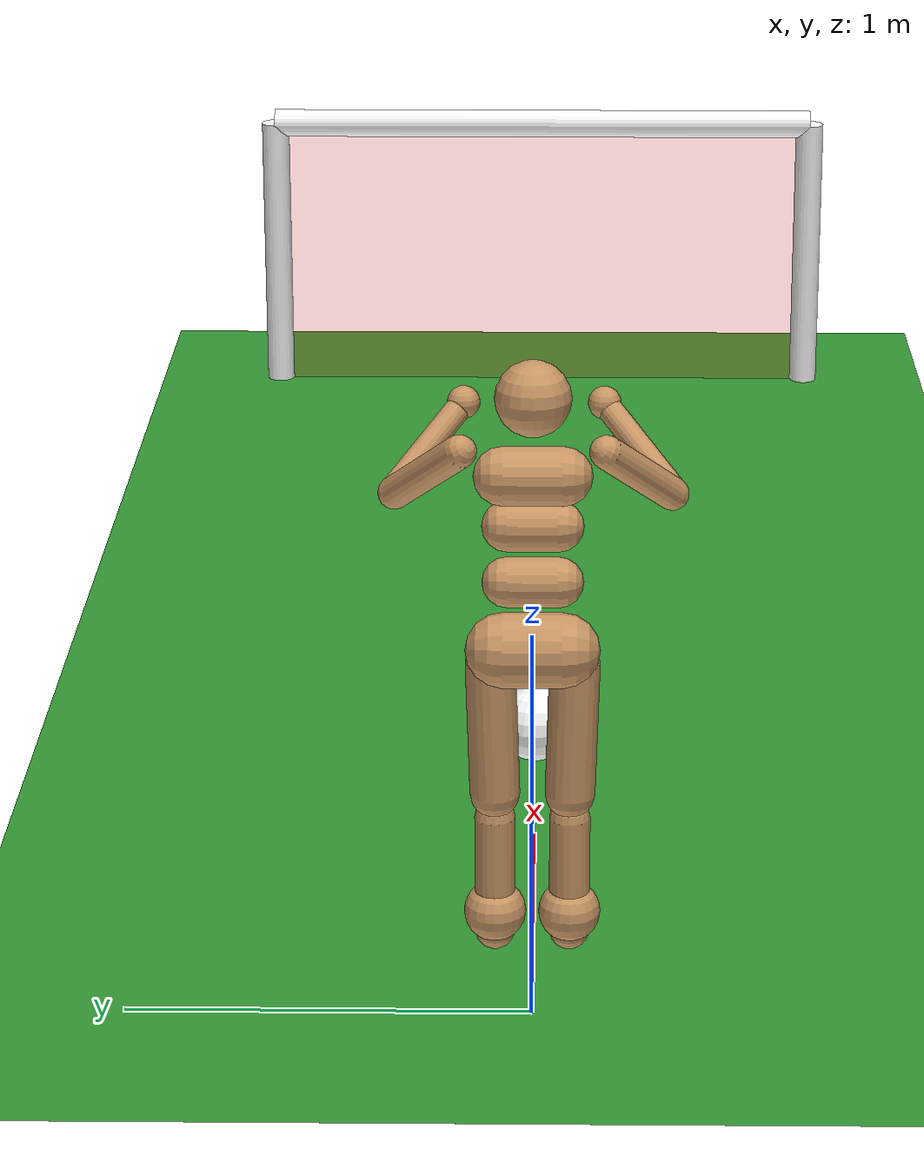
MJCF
<mujoco model="humanoid_soccer">
  <!--
    人形機器人足球場景
    基於 Gymnasium Humanoid-v5 修改，加入足球和球門
  -->

  <compiler angle="degree" inertiafromgeom="true"/>

  <default>
    <joint armature="1" damping="1" limited="true"/>
    <geom conaffinity="1" condim="3" contype="1" margin="0.001" material="geom" rgba="0.8 0.6 .4 1"/>
    <motor ctrllimited="true" ctrlrange="-.4 .4"/>
  </default>

  <option integrator="RK4" iterations="50" solver="PGS" timestep="0.003"/>

  <size nkey="5" nuser_geom="1"/>

  <visual>
    <map fogend="5" fogstart="3"/>
    <global offwidth="1280" offheight="720"/>
  </visual>

  <asset>
    <texture builtin="gradient" height="100" rgb1=".4 .5 .6" rgb2="0 0 0" type="skybox" width="100"/>
    <texture builtin="flat" height="1278" mark="cross" markrgb="1 1 1" name="texgeom" random="0.01" rgb1="0.8 0.6 0.4" rgb2="0.8 0.6 0.4" type="cube" width="127"/>
    <texture builtin="checker" height="100" name="texplane" rgb1="0.2 0.6 0.2" rgb2="0.1 0.5 0.1" type="2d" width="100"/>
    <material name="MatPlane" reflectance="0.5" shininess="1" specular="1" texrepeat="30 30" texture="texplane"/>
    <material name="geom" texture="texgeom" texuniform="true"/>
    <!-- 足球材質 - 白色帶黑色斑紋 -->
    <material name="ball_material" rgba="1 1 1 1" specular="0.5" shininess="0.5"/>
    <!-- 球門材質 - 白色 -->
    <material name="goal_material" rgba="1 1 1 1"/>
  </asset>

  <worldbody>
    <!-- 光源 -->
    <light cutoff="100" diffuse="1 1 1" dir="-0 0 -1.3" directional="true" exponent="1" pos="0 0 1.3" specular=".1 .1 .1"/>

    <!-- 地板 - 綠色足球場 -->
    <geom conaffinity="1" condim="3" material="MatPlane" name="floor" pos="0 0 0" rgba="0.2 0.6 0.2 1" size="20 20 0.1" type="plane"/>

    <!-- ==================== 人形機器人 ==================== -->
    <body name="torso" pos="0 0 1.4">
      <camera name="track" mode="trackcom" pos="0 -4 0" xyaxes="1 0 0 0 0 1"/>
      <joint armature="0" damping="0" limited="false" name="root" pos="0 0 0" stiffness="0" type="free"/>
      <geom fromto="0 -.07 0 0 .07 0" name="torso1" size="0.07" type="capsule"/>
      <geom name="head" pos="0 0 .19" size=".09" type="sphere" user="258"/>
      <geom fromto="-.01 -.06 -.12 -.01 .06 -.12" name="uwaist" size="0.06" type="capsule"/>

      <body name="lwaist" pos="-.01 0 -0.260" quat="1.000 0 -0.002 0">
        <geom fromto="0 -.06 0 0 .06 0" name="lwaist" size="0.06" type="capsule"/>
        <joint armature="0.02" axis="0 0 1" damping="5" name="abdomen_z" pos="0 0 0.065" range="-45 45" stiffness="20" type="hinge"/>
        <joint armature="0.02" axis="0 1 0" damping="5" name="abdomen_y" pos="0 0 0.065" range="-75 30" stiffness="10" type="hinge"/>

        <body name="pelvis" pos="0 0 -0.165" quat="1.000 0 -0.002 0">
          <joint armature="0.02" axis="1 0 0" damping="5" name="abdomen_x" pos="0 0 0.1" range="-35 35" stiffness="10" type="hinge"/>
          <geom fromto="-.02 -.07 0 -.02 .07 0" name="butt" size="0.09" type="capsule"/>

          <!-- 右腿 -->
          <body name="right_thigh" pos="0 -0.1 -0.04">
            <joint armature="0.01" axis="-1 0 0" damping="5" name="right_hip_x" pos="0 0 0" range="-25 5" stiffness="10" type="hinge"/>
            <joint armature="0.01" axis="0 0 -1" damping="5" name="right_hip_z" pos="0 0 0" range="-60 35" stiffness="10" type="hinge"/>
            <joint armature="0.0080" axis="0 1 0" damping="5" name="right_hip_y" pos="0 0 0" range="-110 20" stiffness="20" type="hinge"/>
            <geom fromto="0 0 0 0 0.01 -.34" name="right_thigh1" size="0.06" type="capsule"/>

            <body name="right_shin" pos="0 0.01 -0.403">
              <joint armature="0.0060" axis="0 -1 0" name="right_knee" pos="0 0 .02" range="-160 -2" stiffness="1" type="hinge"/>
              <geom fromto="0 0 0 0 0 -.3" name="right_shin1" size="0.049" type="capsule"/>

              <body name="right_foot" pos="0 0 -0.35">
                <joint armature="0.0008" axis="0 1 0" name="right_ankle_y" pos="0 0 0.08" range="-50 50" stiffness="4" type="hinge"/>
                <joint armature="0.0006" axis="1 0 0.5" name="right_ankle_x" pos="0 0 0.08" range="-50 50" stiffness="1" type="hinge"/>
                <geom name="right_foot" type="sphere" size="0.075" pos="0 0 0.1" user="0" />
              </body>
            </body>
          </body>

          <!-- 左腿 -->
          <body name="left_thigh" pos="0 0.1 -0.04">
            <joint armature="0.01" axis="-1 0 0" damping="5" name="left_hip_x" pos="0 0 0" range="-25 5" stiffness="10" type="hinge"/>
            <joint armature="0.01" axis="0 0 -1" damping="5" name="left_hip_z" pos="0 0 0" range="-60 35" stiffness="10" type="hinge"/>
            <joint armature="0.01" axis="0 1 0" damping="5" name="left_hip_y" pos="0 0 0" range="-110 20" stiffness="20" type="hinge"/>
            <geom fromto="0 0 0 0 -0.01 -.34" name="left_thigh1" size="0.06" type="capsule"/>

            <body name="left_shin" pos="0 -0.01 -0.403">
              <joint armature="0.0060" axis="0 -1 0" name="left_knee" pos="0 0 .02" range="-160 -2" stiffness="1" type="hinge"/>
              <geom fromto="0 0 0 0 0 -.3" name="left_shin1" size="0.049" type="capsule"/>

              <body name="left_foot" pos="0 0 -0.35">
                <joint armature="0.0008" axis="0 1 0" name="left_ankle_y" pos="0 0 0.08" range="-50 50" stiffness="4" type="hinge"/>
                <joint armature="0.0006" axis="1 0 0.5" name="left_ankle_x" pos="0 0 0.08" range="-50 50" stiffness="1" type="hinge"/>
                <geom name="left_foot" type="sphere" size="0.075" pos="0 0 0.1" user="0" />
              </body>
            </body>
          </body>
        </body>
      </body>

      <!-- 右臂 -->
      <body name="right_upper_arm" pos="0 -0.17 0.06">
        <joint armature="0.0068" axis="2 1 1" name="right_shoulder1" pos="0 0 0" range="-85 60" stiffness="1" type="hinge"/>
        <joint armature="0.0051" axis="0 -1 1" name="right_shoulder2" pos="0 0 0" range="-85 60" stiffness="1" type="hinge"/>
        <geom fromto="0 0 0 .16 -.16 -.16" name="right_uarm1" size="0.04 0.16" type="capsule"/>

        <body name="right_lower_arm" pos=".18 -.18 -.18">
          <joint armature="0.0028" axis="0 -1 1" name="right_elbow" pos="0 0 0" range="-90 50" stiffness="0" type="hinge"/>
          <geom fromto="0.01 0.01 0.01 .17 .17 .17" name="right_larm" size="0.031" type="capsule"/>
          <geom name="right_hand" pos=".18 .18 .18" size="0.04" type="sphere"/>
        </body>
      </body>

      <!-- 左臂 -->
      <body name="left_upper_arm" pos="0 0.17 0.06">
        <joint armature="0.0068" axis="2 -1 1" name="left_shoulder1" pos="0 0 0" range="-60 85" stiffness="1" type="hinge"/>
        <joint armature="0.0051" axis="0 1 1" name="left_shoulder2" pos="0 0 0" range="-60 85" stiffness="1" type="hinge"/>
        <geom fromto="0 0 0 .16 .16 -.16" name="left_uarm1" size="0.04 0.16" type="capsule"/>

        <body name="left_lower_arm" pos=".18 .18 -.18">
          <joint armature="0.0028" axis="0 -1 -1" name="left_elbow" pos="0 0 0" range="-90 50" stiffness="0" type="hinge"/>
          <geom fromto="0.01 -0.01 0.01 .17 -.17 .17" name="left_larm" size="0.031" type="capsule"/>
          <geom name="left_hand" pos=".18 -.18 .18" size="0.04" type="sphere"/>
        </body>
      </body>
    </body>

    <!-- ==================== 足球 ==================== -->
    <!--
      球放在機器人前方 1.5 公尺處
      使用 freejoint 讓球可以自由移動
      半徑 0.11 公尺（標準足球約 22cm 直徑）
    -->
    <body name="ball" pos="1.5 0 0.11">
      <joint name="ball_joint" type="free" armature="0" damping="0.01"/>
      <geom name="ball_geom" type="sphere" size="0.11" mass="0.43"
            material="ball_material" rgba="1 1 1 1"
            contype="1" conaffinity="1" condim="3"
            friction="0.7 0.005 0.0001"/>
    </body>

    <!-- ==================== 球門 ==================== -->
    <!--
      球門在機器人前方 5 公尺處
      標準五人制球門約 3m x 2m，這裡簡化為 2m x 1m
    -->
    <!-- 球門左柱 -->
    <geom name="goal_post_left" type="cylinder" size="0.05 0.5"
          pos="5 -1 0.5" rgba="1 1 1 1" contype="1" conaffinity="1"/>
    <!-- 球門右柱 -->
    <geom name="goal_post_right" type="cylinder" size="0.05 0.5"
          pos="5 1 0.5" rgba="1 1 1 1" contype="1" conaffinity="1"/>
    <!-- 球門橫樑 -->
    <geom name="goal_crossbar" type="cylinder" size="0.05 1"
          pos="5 0 1" euler="90 0 0" rgba="1 1 1 1" contype="1" conaffinity="1"/>

    <!-- 球門偵測區域（透明，用於判斷進球） -->
    <site name="goal_zone" type="box" size="0.1 1 0.5" pos="5.1 0 0.5" rgba="1 0 0 0.1"/>

  </worldbody>

  <!-- ==================== 執行器（馬達） ==================== -->
  <actuator>
    <motor ctrllimited="true" ctrlrange="-.4 .4" joint="abdomen_y" gear="40"/>
    <motor ctrllimited="true" ctrlrange="-.4 .4" joint="abdomen_z" gear="40"/>
    <motor ctrllimited="true" ctrlrange="-.4 .4" joint="abdomen_x" gear="40"/>
    <motor ctrllimited="true" ctrlrange="-.4 .4" joint="right_hip_x" gear="40"/>
    <motor ctrllimited="true" ctrlrange="-.4 .4" joint="right_hip_z" gear="40"/>
    <motor ctrllimited="true" ctrlrange="-.4 .4" joint="right_hip_y" gear="120"/>
    <motor ctrllimited="true" ctrlrange="-.4 .4" joint="right_knee" gear="80"/>
    <motor ctrllimited="true" ctrlrange="-.4 .4" joint="right_ankle_y" gear="20"/>
    <motor ctrllimited="true" ctrlrange="-.4 .4" joint="right_ankle_x" gear="20"/>
    <motor ctrllimited="true" ctrlrange="-.4 .4" joint="left_hip_x" gear="40"/>
    <motor ctrllimited="true" ctrlrange="-.4 .4" joint="left_hip_z" gear="40"/>
    <motor ctrllimited="true" ctrlrange="-.4 .4" joint="left_hip_y" gear="120"/>
    <motor ctrllimited="true" ctrlrange="-.4 .4" joint="left_knee" gear="80"/>
    <motor ctrllimited="true" ctrlrange="-.4 .4" joint="left_ankle_y" gear="20"/>
    <motor ctrllimited="true" ctrlrange="-.4 .4" joint="left_ankle_x" gear="20"/>
    <motor ctrllimited="true" ctrlrange="-.4 .4" joint="right_shoulder1" gear="20"/>
    <motor ctrllimited="true" ctrlrange="-.4 .4" joint="right_shoulder2" gear="20"/>
    <motor ctrllimited="true" ctrlrange="-.4 .4" joint="right_elbow" gear="40"/>
    <motor ctrllimited="true" ctrlrange="-.4 .4" joint="left_shoulder1" gear="20"/>
    <motor ctrllimited="true" ctrlrange="-.4 .4" joint="left_shoulder2" gear="20"/>
    <motor ctrllimited="true" ctrlrange="-.4 .4" joint="left_elbow" gear="40"/>
  </actuator>

</mujoco>
